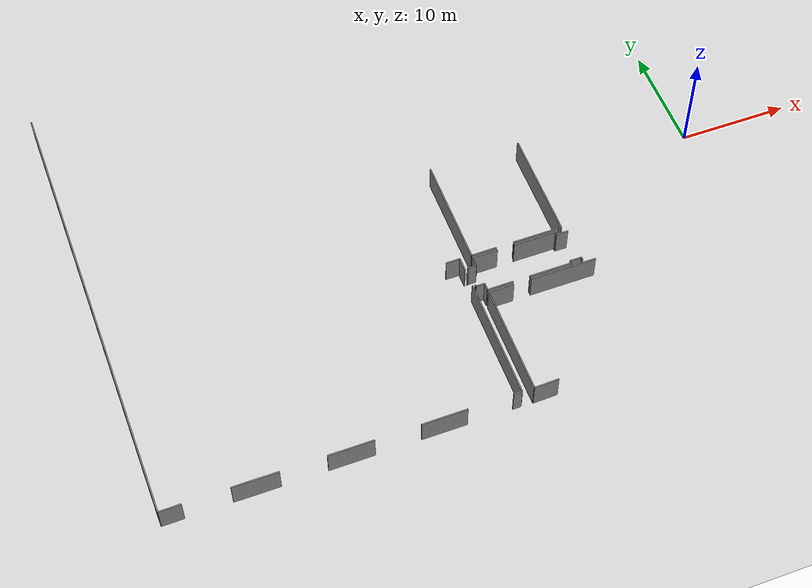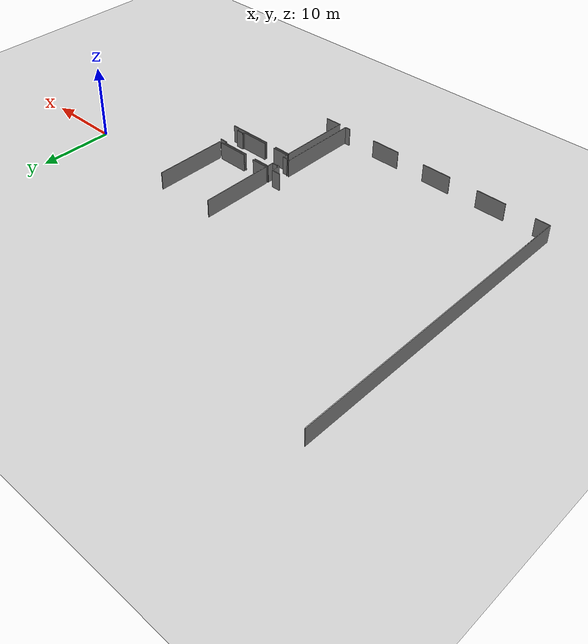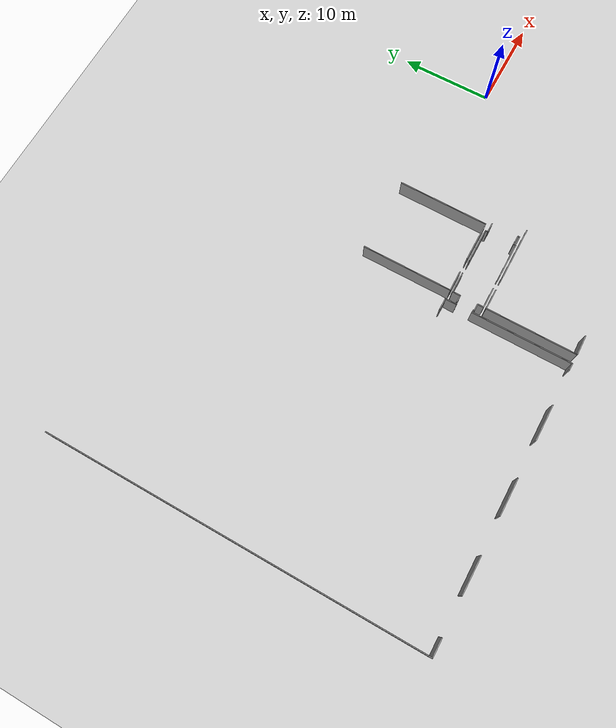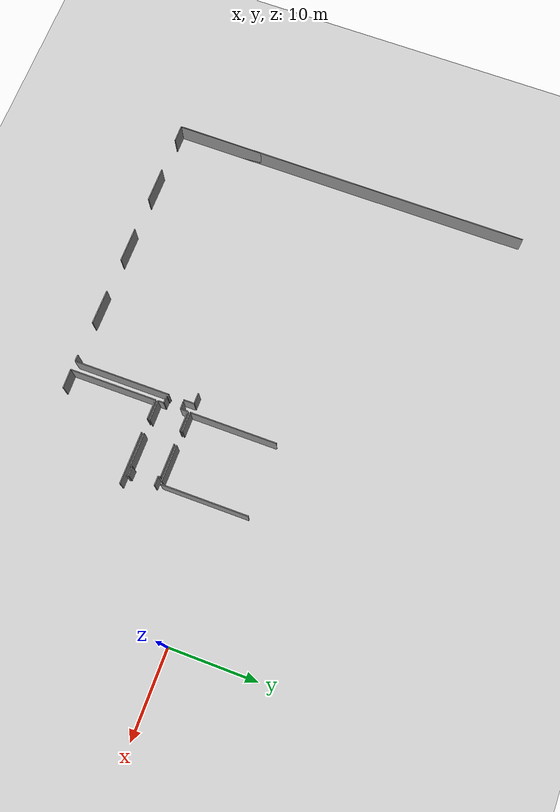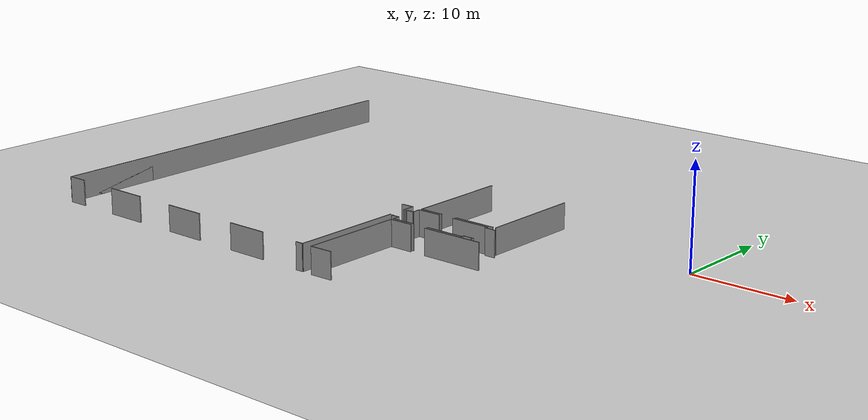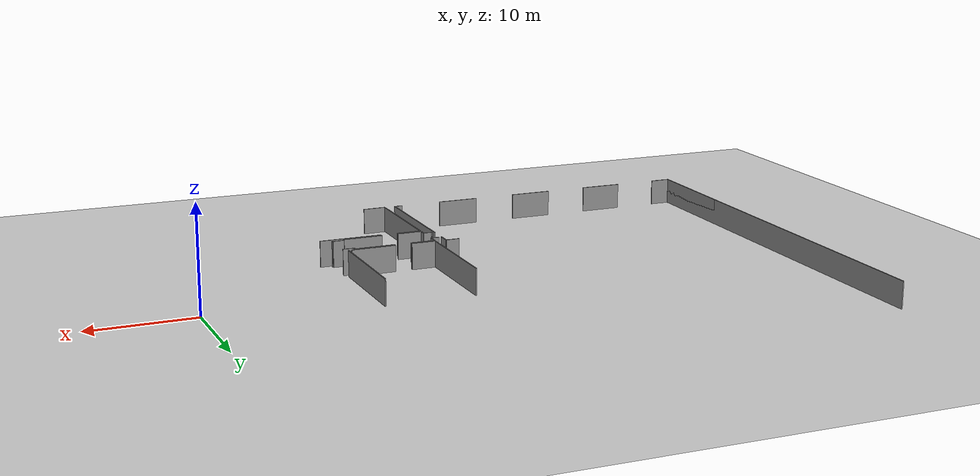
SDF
<sdf version="1.6">
 <world name="default">
  <model name="ground_plane">
   <static>1</static>
   <link name="link">
    <collision name="collision">
     <geometry><plane><normal>0 0 1</normal><size>100 100</size></plane></geometry>
     <surface><friction><ode><mu>100</mu><mu2>50</mu2></ode></friction></surface>
    </collision>
    <visual name="visual">
     <cast_shadows>0</cast_shadows>
     <geometry><plane><normal>0 0 1</normal><size>100 100</size></plane></geometry>
     <material>
      <script><uri>file://media/materials/scripts/gazebo.material</uri><name>Gazebo/Grey</name></script>
     </material>
    </visual>
   </link>
  </model>
  <model name="50057025">
   <static>1</static>
   <link name="Wall_10">
    <collision name="Wall_10_Collision">
     <geometry><box><size>9.96697981171 0.1 2.5</size></box></geometry>
     <pose>4.98348990585 0 1.25 0 0 0</pose>
    </collision>
    <visual name="Wall_10_Visual">
     <pose>4.98348990585 0 1.25 0 0 0</pose>
     <geometry><box><size>9.96697981171 0.1 2.5</size></box></geometry>
     <material>
      <script><uri>file://media/materials/scripts/gazebo.material</uri><name>Gazebo/Grey</name></script>
      <ambient>1 1 1 1</ambient>
     </material>
    </visual>
    <pose>0.0 -41.7237374243 0 0 0 1.57079632679</pose>
   </link>
   <link name="Wall_22">
    <collision name="Wall_22_Collision">
     <geometry><box><size>1.2665971727 0.1 2.5</size></box></geometry>
     <pose>0.633298586351 0 1.25 0 0 0</pose>
    </collision>
    <visual name="Wall_22_Visual">
     <pose>0.633298586351 0 1.25 0 0 0</pose>
     <geometry><box><size>1.2665971727 0.1 2.5</size></box></geometry>
     <material>
      <script><uri>file://media/materials/scripts/gazebo.material</uri><name>Gazebo/Grey</name></script>
      <ambient>1 1 1 1</ambient>
     </material>
    </visual>
    <pose>29.6383738412 -27.6921206256 0 0 0 0.0</pose>
   </link>
   <link name="Wall_23">
    <collision name="Wall_23_Collision">
     <geometry><box><size>1.24797819426 0.1 2.5</size></box></geometry>
     <pose>0.623989097132 0 1.25 0 0 0</pose>
    </collision>
    <visual name="Wall_23_Visual">
     <pose>0.623989097132 0 1.25 0 0 0</pose>
     <geometry><box><size>1.24797819426 0.1 2.5</size></box></geometry>
     <material>
      <script><uri>file://media/materials/scripts/gazebo.material</uri><name>Gazebo/Grey</name></script>
      <ambient>1 1 1 1</ambient>
     </material>
    </visual>
    <pose>30.9049710139 -27.6921206256 0 0 0 -1.57079632679</pose>
   </link>
   <link name="Wall_24">
    <collision name="Wall_24_Collision">
     <geometry><box><size>11.0739857406 0.1 2.5</size></box></geometry>
     <pose>5.53699287032 0 1.25 0 0 0</pose>
    </collision>
    <visual name="Wall_24_Visual">
     <pose>5.53699287032 0 1.25 0 0 0</pose>
     <geometry><box><size>11.0739857406 0.1 2.5</size></box></geometry>
     <material>
      <script><uri>file://media/materials/scripts/gazebo.material</uri><name>Gazebo/Grey</name></script>
      <ambient>1 1 1 1</ambient>
     </material>
    </visual>
    <pose>30.9049710139 -30.6380989896 0 0 0 -1.57079632679</pose>
   </link>
   <link name="Wall_25">
    <collision name="Wall_25_Collision">
     <geometry><box><size>0.745519095852 0.1 2.5</size></box></geometry>
     <pose>0.372759547926 0 1.25 0 0 0</pose>
    </collision>
    <visual name="Wall_25_Visual">
     <pose>0.372759547926 0 1.25 0 0 0</pose>
     <geometry><box><size>0.745519095852 0.1 2.5</size></box></geometry>
     <material>
      <script><uri>file://media/materials/scripts/gazebo.material</uri><name>Gazebo/Grey</name></script>
      <ambient>1 1 1 1</ambient>
     </material>
    </visual>
    <pose>30.9049710139 -41.7120847303 0 0 0 3.14159265359</pose>
   </link>
   <link name="Wall_26">
    <collision name="Wall_26_Collision">
     <geometry><box><size>4.03677184912 0.1 2.5</size></box></geometry>
     <pose>2.01838592456 0 1.25 0 0 0</pose>
    </collision>
    <visual name="Wall_26_Visual">
     <pose>2.01838592456 0 1.25 0 0 0</pose>
     <geometry><box><size>4.03677184912 0.1 2.5</size></box></geometry>
     <material>
      <script><uri>file://media/materials/scripts/gazebo.material</uri><name>Gazebo/Grey</name></script>
      <ambient>1 1 1 1</ambient>
     </material>
    </visual>
    <pose>26.1453521583 -41.7120847303 0 0 0 3.14159265359</pose>
   </link>
   <link name="Wall_27">
    <collision name="Wall_27_Collision">
     <geometry><box><size>4.043991453 0.1 2.5</size></box></geometry>
     <pose>2.0219957265 0 1.25 0 0 0</pose>
    </collision>
    <visual name="Wall_27_Visual">
     <pose>2.0219957265 0 1.25 0 0 0</pose>
     <geometry><box><size>4.043991453 0.1 2.5</size></box></geometry>
     <material>
      <script><uri>file://media/materials/scripts/gazebo.material</uri><name>Gazebo/Grey</name></script>
      <ambient>1 1 1 1</ambient>
     </material>
    </visual>
    <pose>18.0944805495 -41.7120847303 0 0 0 3.14159265359</pose>
   </link>
   <link name="Wall_28">
    <collision name="Wall_28_Collision">
     <geometry><box><size>4.04918450141 0.1 2.5</size></box></geometry>
     <pose>2.02459225071 0 1.25 0 0 0</pose>
    </collision>
    <visual name="Wall_28_Visual">
     <pose>2.02459225071 0 1.25 0 0 0</pose>
     <geometry><box><size>4.04918450141 0.1 2.5</size></box></geometry>
     <material>
      <script><uri>file://media/materials/scripts/gazebo.material</uri><name>Gazebo/Grey</name></script>
      <ambient>1 1 1 1</ambient>
     </material>
    </visual>
    <pose>10.0391758506 -41.7120847303 0 0 0 3.14159265359</pose>
   </link>
   <link name="Wall_29">
    <collision name="Wall_29_Collision">
     <geometry><box><size>1.94096848651 0.1 2.5</size></box></geometry>
     <pose>0.970484243253 0 1.25 0 0 0</pose>
    </collision>
    <visual name="Wall_29_Visual">
     <pose>0.970484243253 0 1.25 0 0 0</pose>
     <geometry><box><size>1.94096848651 0.1 2.5</size></box></geometry>
     <material>
      <script><uri>file://media/materials/scripts/gazebo.material</uri><name>Gazebo/Grey</name></script>
      <ambient>1 1 1 1</ambient>
     </material>
    </visual>
    <pose>1.94093350745 -41.7120847303 0 0 0 -3.13558907132</pose>
   </link>
   <link name="Wall_30">
    <collision name="Wall_30_Collision">
     <geometry><box><size>9.95798697178 0.1 2.5</size></box></geometry>
     <pose>4.97899348589 0 1.25 0 0 0</pose>
    </collision>
    <visual name="Wall_30_Visual">
     <pose>4.97899348589 0 1.25 0 0 0</pose>
     <geometry><box><size>9.95798697178 0.1 2.5</size></box></geometry>
     <material>
      <script><uri>file://media/materials/scripts/gazebo.material</uri><name>Gazebo/Grey</name></script>
      <ambient>1 1 1 1</ambient>
     </material>
    </visual>
    <pose>31.9786654372 -27.7137794373 0 0 0 1.57079632679</pose>
   </link>
   <link name="Wall_34">
    <collision name="Wall_34_Collision">
     <geometry><box><size>4.21865520312 0.1 2.5</size></box></geometry>
     <pose>2.10932760156 0 1.25 0 0 0</pose>
    </collision>
    <visual name="Wall_34_Visual">
     <pose>2.10932760156 0 1.25 0 0 0</pose>
     <geometry><box><size>4.21865520312 0.1 2.5</size></box></geometry>
     <material>
      <script><uri>file://media/materials/scripts/gazebo.material</uri><name>Gazebo/Grey</name></script>
      <ambient>1 1 1 1</ambient>
     </material>
    </visual>
    <pose>40.1016064252 -27.7031400211 0 0 0 3.14159265359</pose>
   </link>
   <link name="Wall_35">
    <collision name="Wall_35_Collision">
     <geometry><box><size>2.30485143158 0.1 2.5</size></box></geometry>
     <pose>1.15242571579 0 1.25 0 0 0</pose>
    </collision>
    <visual name="Wall_35_Visual">
     <pose>1.15242571579 0 1.25 0 0 0</pose>
     <geometry><box><size>2.30485143158 0.1 2.5</size></box></geometry>
     <material>
      <script><uri>file://media/materials/scripts/gazebo.material</uri><name>Gazebo/Grey</name></script>
      <ambient>1 1 1 1</ambient>
     </material>
    </visual>
    <pose>34.2834923124 -27.7031400211 0 0 0 -3.13697654086</pose>
   </link>
   <link name="Wall_36">
    <collision name="Wall_36_Collision">
     <geometry><box><size>9.96039350641 0.1 2.5</size></box></geometry>
     <pose>4.9801967532 0 1.25 0 0 0</pose>
    </collision>
    <visual name="Wall_36_Visual">
     <pose>4.9801967532 0 1.25 0 0 0</pose>
     <geometry><box><size>9.96039350641 0.1 2.5</size></box></geometry>
     <material>
      <script><uri>file://media/materials/scripts/gazebo.material</uri><name>Gazebo/Grey</name></script>
      <ambient>1 1 1 1</ambient>
     </material>
    </visual>
    <pose>40.3863374696 -27.7208723815 0 0 0 1.57079632679</pose>
   </link>
   <link name="Wall_42">
    <collision name="Wall_42_Collision">
     <geometry><box><size>0.674589654181 0.1 2.5</size></box></geometry>
     <pose>0.33729482709 0 1.25 0 0 0</pose>
    </collision>
    <visual name="Wall_42_Visual">
     <pose>0.33729482709 0 1.25 0 0 0</pose>
     <geometry><box><size>0.674589654181 0.1 2.5</size></box></geometry>
     <material>
      <script><uri>file://media/materials/scripts/gazebo.material</uri><name>Gazebo/Grey</name></script>
      <ambient>1 1 1 1</ambient>
     </material>
    </visual>
    <pose>31.9582732227 -31.4768396374 0 0 0 1.57079632679</pose>
   </link>
   <link name="Wall_43">
    <collision name="Wall_43_Collision">
     <geometry><box><size>0.78275705273 0.1 2.5</size></box></geometry>
     <pose>0.391378526365 0 1.25 0 0 0</pose>
    </collision>
    <visual name="Wall_43_Visual">
     <pose>0.391378526365 0 1.25 0 0 0</pose>
     <geometry><box><size>0.78275705273 0.1 2.5</size></box></geometry>
     <material>
      <script><uri>file://media/materials/scripts/gazebo.material</uri><name>Gazebo/Grey</name></script>
      <ambient>1 1 1 1</ambient>
     </material>
    </visual>
    <pose>31.9582732227 -30.8022499832 0 0 0 3.14159265359</pose>
   </link>
   <link name="Wall_44">
    <collision name="Wall_44_Collision">
     <geometry><box><size>0.141605563908 0.1 2.5</size></box></geometry>
     <pose>0.070802781954 0 1.25 0 0 0</pose>
    </collision>
    <visual name="Wall_44_Visual">
     <pose>0.070802781954 0 1.25 0 0 0</pose>
     <geometry><box><size>0.141605563908 0.1 2.5</size></box></geometry>
     <material>
      <script><uri>file://media/materials/scripts/gazebo.material</uri><name>Gazebo/Grey</name></script>
      <ambient>1 1 1 1</ambient>
     </material>
    </visual>
    <pose>31.17551617 -30.8022499832 0 0 0 1.57079632679</pose>
   </link>
   <link name="Wall_45">
    <collision name="Wall_45_Collision">
     <geometry><box><size>0.101327773816 0.1 2.5</size></box></geometry>
     <pose>0.0506638869081 0 1.25 0 0 0</pose>
    </collision>
    <visual name="Wall_45_Visual">
     <pose>0.0506638869081 0 1.25 0 0 0</pose>
     <geometry><box><size>0.101327773816 0.1 2.5</size></box></geometry>
     <material>
      <script><uri>file://media/materials/scripts/gazebo.material</uri><name>Gazebo/Grey</name></script>
      <ambient>1 1 1 1</ambient>
     </material>
    </visual>
    <pose>31.17551617 -28.9575778609 0 0 0 1.57079632679</pose>
   </link>
   <link name="Wall_46">
    <collision name="Wall_46_Collision">
     <geometry><box><size>0.779083920929 0.1 2.5</size></box></geometry>
     <pose>0.389541960464 0 1.25 0 0 0</pose>
    </collision>
    <visual name="Wall_46_Visual">
     <pose>0.389541960464 0 1.25 0 0 0</pose>
     <geometry><box><size>0.779083920929 0.1 2.5</size></box></geometry>
     <material>
      <script><uri>file://media/materials/scripts/gazebo.material</uri><name>Gazebo/Grey</name></script>
      <ambient>1 1 1 1</ambient>
     </material>
    </visual>
    <pose>31.17551617 -28.8562500871 0 0 0 0.0</pose>
   </link>
   <link name="Wall_47">
    <collision name="Wall_47_Collision">
     <geometry><box><size>0.861286077437 0.1 2.5</size></box></geometry>
     <pose>0.430643038719 0 1.25 0 0 0</pose>
    </collision>
    <visual name="Wall_47_Visual">
     <pose>0.430643038719 0 1.25 0 0 0</pose>
     <geometry><box><size>0.861286077437 0.1 2.5</size></box></geometry>
     <material>
      <script><uri>file://media/materials/scripts/gazebo.material</uri><name>Gazebo/Grey</name></script>
      <ambient>1 1 1 1</ambient>
     </material>
    </visual>
    <pose>31.9546000909 -28.8562500871 0 0 0 1.57079632679</pose>
   </link>
   <link name="Wall_48">
    <collision name="Wall_48_Collision">
     <geometry><box><size>2.3153396317 0.1 2.5</size></box></geometry>
     <pose>1.15766981585 0 1.25 0 0 0</pose>
    </collision>
    <visual name="Wall_48_Visual">
     <pose>1.15766981585 0 1.25 0 0 0</pose>
     <geometry><box><size>2.3153396317 0.1 2.5</size></box></geometry>
     <material>
      <script><uri>file://media/materials/scripts/gazebo.material</uri><name>Gazebo/Grey</name></script>
      <ambient>1 1 1 1</ambient>
     </material>
    </visual>
    <pose>31.9546000909 -27.9949640096 0 0 0 0.0</pose>
   </link>
   <link name="Wall_49">
    <collision name="Wall_49_Collision">
     <geometry><box><size>3.8642613142 0.1 2.5</size></box></geometry>
     <pose>1.9321306571 0 1.25 0 0 0</pose>
    </collision>
    <visual name="Wall_49_Visual">
     <pose>1.9321306571 0 1.25 0 0 0</pose>
     <geometry><box><size>3.8642613142 0.1 2.5</size></box></geometry>
     <material>
      <script><uri>file://media/materials/scripts/gazebo.material</uri><name>Gazebo/Grey</name></script>
      <ambient>1 1 1 1</ambient>
     </material>
    </visual>
    <pose>35.8308940783 -27.9949640096 0 0 0 0.0</pose>
   </link>
   <link name="Wall_50">
    <collision name="Wall_50_Collision">
     <geometry><box><size>0.26725200344 0.1 2.5</size></box></geometry>
     <pose>0.13362600172 0 1.25 0 0 0</pose>
    </collision>
    <visual name="Wall_50_Visual">
     <pose>0.13362600172 0 1.25 0 0 0</pose>
     <geometry><box><size>0.26725200344 0.1 2.5</size></box></geometry>
     <material>
      <script><uri>file://media/materials/scripts/gazebo.material</uri><name>Gazebo/Grey</name></script>
      <ambient>1 1 1 1</ambient>
     </material>
    </visual>
    <pose>39.6951553925 -27.9949640096 0 0 0 -1.57079632679</pose>
   </link>
   <link name="Wall_51">
    <collision name="Wall_51_Collision">
     <geometry><box><size>1.06596818055 0.1 2.5</size></box></geometry>
     <pose>0.532984090273 0 1.25 0 0 0</pose>
    </collision>
    <visual name="Wall_51_Visual">
     <pose>0.532984090273 0 1.25 0 0 0</pose>
     <geometry><box><size>1.06596818055 0.1 2.5</size></box></geometry>
     <material>
      <script><uri>file://media/materials/scripts/gazebo.material</uri><name>Gazebo/Grey</name></script>
      <ambient>1 1 1 1</ambient>
     </material>
    </visual>
    <pose>39.6951553925 -28.2622160131 0 0 0 0.0</pose>
   </link>
   <link name="Wall_59">
    <collision name="Wall_59_Collision">
     <geometry><box><size>0.241540080834 0.1 2.5</size></box></geometry>
     <pose>0.120770040417 0 1.25 0 0 0</pose>
    </collision>
    <visual name="Wall_59_Visual">
     <pose>0.120770040417 0 1.25 0 0 0</pose>
     <geometry><box><size>0.241540080834 0.1 2.5</size></box></geometry>
     <material>
      <script><uri>file://media/materials/scripts/gazebo.material</uri><name>Gazebo/Grey</name></script>
      <ambient>1 1 1 1</ambient>
     </material>
    </visual>
    <pose>40.7461777264 -31.4648069643 0 0 0 1.57079632679</pose>
   </link>
   <link name="Wall_60">
    <collision name="Wall_60_Collision">
     <geometry><box><size>1.04392938974 0.1 2.5</size></box></geometry>
     <pose>0.52196469487 0 1.25 0 0 0</pose>
    </collision>
    <visual name="Wall_60_Visual">
     <pose>0.52196469487 0 1.25 0 0 0</pose>
     <geometry><box><size>1.04392938974 0.1 2.5</size></box></geometry>
     <material>
      <script><uri>file://media/materials/scripts/gazebo.material</uri><name>Gazebo/Grey</name></script>
      <ambient>1 1 1 1</ambient>
     </material>
    </visual>
    <pose>40.7461777264 -31.2232668834 0 0 0 3.14159265359</pose>
   </link>
   <link name="Wall_61">
    <collision name="Wall_61_Collision">
     <geometry><box><size>0.239386865641 0.1 2.5</size></box></geometry>
     <pose>0.11969343282 0 1.25 0 0 0</pose>
    </collision>
    <visual name="Wall_61_Visual">
     <pose>0.11969343282 0 1.25 0 0 0</pose>
     <geometry><box><size>0.239386865641 0.1 2.5</size></box></geometry>
     <material>
      <script><uri>file://media/materials/scripts/gazebo.material</uri><name>Gazebo/Grey</name></script>
      <ambient>1 1 1 1</ambient>
     </material>
    </visual>
    <pose>39.7022483366 -31.2232668834 0 0 0 -1.57079632679</pose>
   </link>
   <link name="Wall_62">
    <collision name="Wall_62_Collision">
     <geometry><box><size>3.85007542586 0.1 2.5</size></box></geometry>
     <pose>1.92503771293 0 1.25 0 0 0</pose>
    </collision>
    <visual name="Wall_62_Visual">
     <pose>1.92503771293 0 1.25 0 0 0</pose>
     <geometry><box><size>3.85007542586 0.1 2.5</size></box></geometry>
     <material>
      <script><uri>file://media/materials/scripts/gazebo.material</uri><name>Gazebo/Grey</name></script>
      <ambient>1 1 1 1</ambient>
     </material>
    </visual>
    <pose>39.7022483366 -31.4626537491 0 0 0 3.14159265359</pose>
   </link>
   <link name="Wall_63">
    <collision name="Wall_63_Collision">
     <geometry><box><size>2.34236110841 0.1 2.5</size></box></geometry>
     <pose>1.1711805542 0 1.25 0 0 0</pose>
    </collision>
    <visual name="Wall_63_Visual">
     <pose>1.1711805542 0 1.25 0 0 0</pose>
     <geometry><box><size>2.34236110841 0.1 2.5</size></box></geometry>
     <material>
      <script><uri>file://media/materials/scripts/gazebo.material</uri><name>Gazebo/Grey</name></script>
      <ambient>1 1 1 1</ambient>
     </material>
    </visual>
    <pose>34.3005913742 -31.4626537491 0 0 0 -3.13553638199</pose>
   </link>
   <link name="Wall_64">
    <collision name="Wall_64_Collision">
     <geometry><box><size>9.98838530393 0.1 2.5</size></box></geometry>
     <pose>4.99419265196 0 1.25 0 0 0</pose>
    </collision>
    <visual name="Wall_64_Visual">
     <pose>4.99419265196 0 1.25 0 0 0</pose>
     <geometry><box><size>9.98838530393 0.1 2.5</size></box></geometry>
     <material>
      <script><uri>file://media/materials/scripts/gazebo.material</uri><name>Gazebo/Grey</name></script>
      <ambient>1 1 1 1</ambient>
     </material>
    </visual>
    <pose>31.9703058959 -41.7575555688 0 0 0 1.57079632679</pose>
   </link>
   <link name="Wall_65">
    <collision name="Wall_65_Collision">
     <geometry><box><size>2.28240810521 0.1 2.5</size></box></geometry>
     <pose>1.1412040526 0 1.25 0 0 0</pose>
    </collision>
    <visual name="Wall_65_Visual">
     <pose>1.1412040526 0 1.25 0 0 0</pose>
     <geometry><box><size>2.28240810521 0.1 2.5</size></box></geometry>
     <material>
      <script><uri>file://media/materials/scripts/gazebo.material</uri><name>Gazebo/Grey</name></script>
      <ambient>1 1 1 1</ambient>
     </material>
    </visual>
    <pose>31.9703058959 -31.7691702649 0 0 0 0.0</pose>
   </link>
   <link name="Wall_66">
    <collision name="Wall_66_Collision">
     <geometry><box><size>5.98581157847 0.1 2.5</size></box></geometry>
     <pose>2.99290578924 0 1.25 0 0 0</pose>
    </collision>
    <visual name="Wall_66_Visual">
     <pose>2.99290578924 0 1.25 0 0 0</pose>
     <geometry><box><size>5.98581157847 0.1 2.5</size></box></geometry>
     <material>
      <script><uri>file://media/materials/scripts/gazebo.material</uri><name>Gazebo/Grey</name></script>
      <ambient>1 1 1 1</ambient>
     </material>
    </visual>
    <pose>35.8521729108 -31.7691702649 0 0 0 0.0</pose>
   </link>
   <link name="Wall_71">
    <collision name="Wall_71_Collision">
     <geometry><box><size>2.20648609543 0.1 2.5</size></box></geometry>
     <pose>1.10324304772 0 1.25 0 0 0</pose>
    </collision>
    <visual name="Wall_71_Visual">
     <pose>1.10324304772 0 1.25 0 0 0</pose>
     <geometry><box><size>2.20648609543 0.1 2.5</size></box></geometry>
     <material>
      <script><uri>file://media/materials/scripts/gazebo.material</uri><name>Gazebo/Grey</name></script>
      <ambient>1 1 1 1</ambient>
     </material>
    </visual>
    <pose>34.1760848721 -41.7016986335 0 0 0 -3.11627506692</pose>
   </link>
   <link name="Wall_325">
    <collision name="Wall_325_Collision">
     <geometry><box><size>41.7575555688 0.1 2.5</size></box></geometry>
     <pose>20.8787777844 0 1.25 0 0 0</pose>
    </collision>
    <visual name="Wall_325_Visual">
     <pose>20.8787777844 0 1.25 0 0 0</pose>
     <geometry><box><size>41.7575555688 0.1 2.5</size></box></geometry>
     <material>
      <script><uri>file://media/materials/scripts/gazebo.material</uri><name>Gazebo/Grey</name></script>
      <ambient>1 1 1 1</ambient>
     </material>
    </visual>
    <pose>0.0 -41.7575555688 0 0 0 1.57079632679</pose>
   </link>
   <pose>-55.75 20.8575555688 0 0 0 0</pose>
  </model>
 </world>
</sdf>
